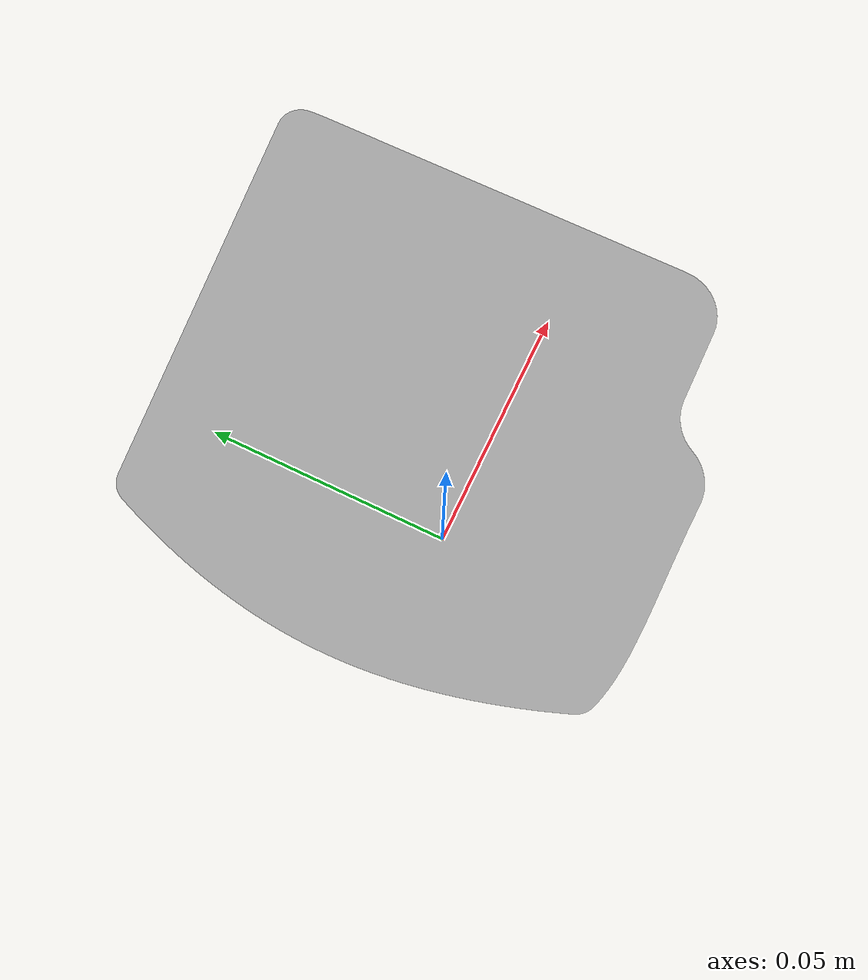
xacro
<?xml version="1.0" ?>
<robot name="hand1" xmlns:xacro="http://www.ros.org/wiki/xacro">

<xacro:include filename="$(find hand1_description)/urdf/materials.xacro" />
<xacro:include filename="$(find hand1_description)/urdf/hand1.trans" />
<xacro:include filename="$(find hand1_description)/urdf/hand1.gazebo" />
<link name="base_link">
  <inertial>
    <origin rpy="0 0 0" xyz="0.0 0.0 0.0"/>
    <mass value="0.0"/>
    <inertia ixx="0.0" ixy="0.0" ixz="0.0" iyy="0.0" iyz="0.0" izz="0.0"/>
  </inertial>
  <visual>
    <origin rpy="0 0 0" xyz="0 0 0"/>
    <geometry>
      <mesh filename="package://hand1_description/meshes/base_link.stl" scale="0.001 0.001 0.001"/>
    </geometry>
    <material name="steel_satin"/>
  </visual>
  <collision>
    <origin rpy="0 0 0" xyz="0 0 0"/>
    <geometry>
      <mesh filename="package://hand1_description/meshes/base_link.stl" scale="0.001 0.001 0.001"/>
    </geometry>
  </collision>
</link>

</robot>

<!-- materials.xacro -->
<robot name="hand1" xmlns:xacro="http://www.ros.org/wiki/xacro" >

<material name="silver_default">
  <color rgba="0.700 0.700 0.700 1.000"/>
</material>
<material name="steel_satin">
  <color rgba="0.6274509803921569 0.6274509803921569 0.6274509803921569 1.0"/>
</material>

</robot>

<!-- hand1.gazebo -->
<robot name="hand1" xmlns:xacro="http://www.ros.org/wiki/xacro" >

<xacro:property name="body_color" value="Gazebo/Silver" />

<gazebo>
  <plugin filename="libgazebo_ros_control.so" name="control"/>
</gazebo>
<gazebo reference="base_link">
  <material>${body_color}</material>
  <mu1>0.2</mu1>
  <mu2>0.2</mu2>
  <selfCollide>true</selfCollide>
  <gravity>true</gravity>
</gazebo>

</robot>
